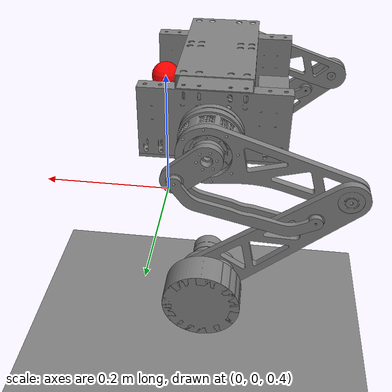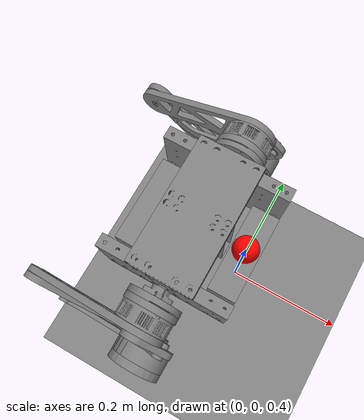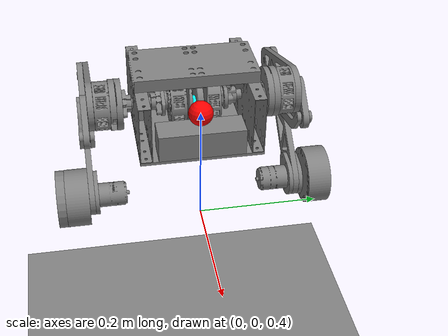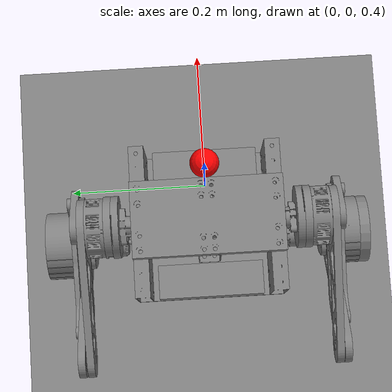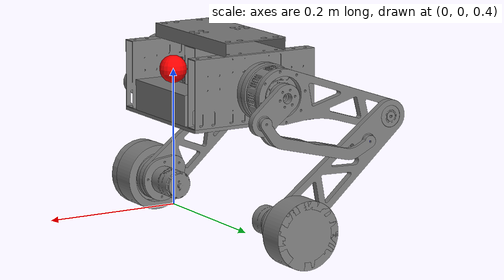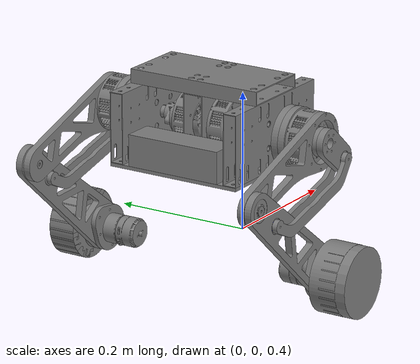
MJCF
<?xml version="1.0" encoding="utf-8"?>
<mujoco model="wheel_leg_axisymmetric_centered_com_scene_v1">
  <compiler angle="radian" autolimits="true"/>
  <option timestep="0.002" gravity="0 0 -9.81" integrator="implicitfast"
          density="1.225" viscosity="1.8e-5"/>
  <include file="wheel_leg_axisymmetric_centered_com_v1.xml"/>
  <worldbody>
    <geom name="floor" pos="0 0 0" size="0 0 .25" type="plane"
          contype="1" conaffinity="0" condim="3"/>
  </worldbody>
</mujoco>

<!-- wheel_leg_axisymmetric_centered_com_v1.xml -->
<mujoco model="wheel_leg_axisymmetric_centered_com_v1">
  <compiler angle="radian" meshdir="assets"/>

  <asset>
  <!-- base -->
    <mesh file="zong_zhuang____base_1__di_ban__1.stl"/>
    <mesh file="zong_zhuang____base_1__dian_chi__1.stl"/>
    <mesh file="zong_zhuang____base_1__dian_chi__2.stl"/>
    <mesh file="zong_zhuang____base_1__zhou_cheng_zhi_zuo_16_46_48_m6_1.stl"/>
    <mesh file="zong_zhuang____base_1__zhou_cheng_zhi_zuo_16_46_48_m6_2.stl"/>
    <mesh file="zong_zhuang____base_1__lv_fang_tong_100_20_200_y_2.stl"/>
    <mesh file="zong_zhuang____base_1__lv_fang_tong_100_20_200_y_3.stl"/>
    <mesh file="zong_zhuang____base_1__lv_fang_tong_100_20_200_2.stl"/>
    <mesh file="zong_zhuang____base_1__lv_fang_tong_100_30_2.stl"/>
    <mesh file="base__joint_motor_assembly_1.stl"/>
    <mesh file="base__joint_motor_assembly_2.stl"/>
  <!-- left_thigh -->
    <mesh file="zong_zhuang____left_thigh_1_16_zhi_cheng_jia__1.stl"/>
    <mesh file="zong_zhuang____left_thigh_1_16_zhi_cheng_jia__2.stl"/>
    <mesh file="zong_zhuang____left_thigh_1__guan_jie_dian_ji_2_dian_kuai__1.stl"/>
    <mesh file="zong_zhuang____left_thigh_1__guan_jie_dian_ji_2_fa_lan_jie_pian__3.stl"/>
    <mesh file="zong_zhuang____left_thigh_1__guan_jie_dian_ji_dian_kuai__1.stl"/>
    <mesh file="zong_zhuang____left_thigh_1__da_tui__1.stl"/>
    <mesh file="zong_zhuang____left_thigh_1__fa_lan_dian_kuai_jie_pian__1.stl"/>
    <mesh file="zong_zhuang____left_thigh_1__tan_guan__1.stl"/>
    <mesh file="left_thigh__joint_motor_assembly_1.stl"/>
  <!-- right_thigh -->
    <mesh file="zong_zhuang____right_thigh_1_16_zhi_cheng_jia__1.stl"/>
    <mesh file="zong_zhuang____right_thigh_1_16_zhi_cheng_jia__2.stl"/>
    <mesh file="zong_zhuang____right_thigh_1__guan_jie_dian_ji_2_dian_kuai__1.stl"/>
    <mesh file="zong_zhuang____right_thigh_1__guan_jie_dian_ji_2_fa_lan_jie_pian__3.stl"/>
    <mesh file="zong_zhuang____right_thigh_1__guan_jie_dian_ji_dian_kuai__1.stl"/>
    <mesh file="zong_zhuang____right_thigh_1__da_tui__1.stl"/>
    <mesh file="zong_zhuang____right_thigh_1__fa_lan_dian_kuai_jie_pian__1.stl"/>
    <mesh file="zong_zhuang____right_thigh_1__tan_guan__1.stl"/>
    <mesh file="right_thigh__joint_motor_assembly_1.stl"/>
  <!-- left_connect1 -->
    <mesh file="zong_zhuang____left_connect1_1__da_tui_lian_gan_1_1.stl"/>
    <mesh file="zong_zhuang____left_connect1_1__da_tui_lian_gan_1_dian_kuai__1.stl"/>

  <!-- right_connect1 -->
    <mesh file="zong_zhuang____right_connect1_1__da_tui_lian_gan_1_1.stl"/>
    <mesh file="zong_zhuang____right_connect1_1__da_tui_lian_gan_1_dian_kuai__1.stl"/>
  <!-- left_connect2 -->
    <mesh file="zong_zhuang____left_connect2_1__dian_pian__m3_10_1_1.stl"/>
    <mesh file="zong_zhuang____left_connect2_1__dian_pian__m3_10_1_2.stl"/>
    <mesh file="zong_zhuang____left_connect2_1__dian_pian__m3_10_1_3.stl"/>
    <mesh file="zong_zhuang____left_connect2_1__dian_pian__m3_10_1_4.stl"/>
    <mesh file="zong_zhuang____left_connect2_1__da_tui_lian_gan_2_1.stl"/>
    <mesh file="zong_zhuang____left_connect2_1__da_tui_lian_gan_2_2.stl"/>
    <mesh file="zong_zhuang____left_connect2_1__tao_tong_luo_mu_m3_8_10_1.stl"/>
    <mesh file="zong_zhuang____left_connect2_1__tao_tong_luo_mu_m3_8_10_2.stl"/>
    <mesh file="zong_zhuang____left_connect2_1__zhou_cheng_8_22_10_1.stl"/>
    <mesh file="zong_zhuang____left_connect2_1__zhou_cheng_8_22_10_2.stl"/>
  <!-- right_connect2 -->
    <mesh file="zong_zhuang____right_connect2_2__dian_pian__m3_10_1_1.stl"/>
    <mesh file="zong_zhuang____right_connect2_2__dian_pian__m3_10_1_2.stl"/>
    <mesh file="zong_zhuang____right_connect2_2__dian_pian__m3_10_1_3.stl"/>
    <mesh file="zong_zhuang____right_connect2_2__dian_pian__m3_10_1_4.stl"/>
    <mesh file="zong_zhuang____right_connect2_2__da_tui_lian_gan_2_1.stl"/>
    <mesh file="zong_zhuang____right_connect2_2__da_tui_lian_gan_2_2.stl"/>
    <mesh file="zong_zhuang____right_connect2_2__tao_tong_luo_mu_m3_8_10_1.stl"/>
    <mesh file="zong_zhuang____right_connect2_2__tao_tong_luo_mu_m3_8_10_2.stl"/>
    <mesh file="zong_zhuang____right_connect2_2__zhou_cheng_8_22_10_1.stl"/>
    <mesh file="zong_zhuang____right_connect2_2__zhou_cheng_8_22_10_2.stl"/>
  <!-- left_calf -->
    <mesh file="zong_zhuang____left_calf_1__dian_pian__m5_14_1_2.stl"/>
    <mesh file="zong_zhuang____left_calf_1__dian_pian__m5_14_1_3.stl"/>
    <mesh file="zong_zhuang____left_calf_1__dian_pian__m6_10_0_5_1.stl"/>
    <mesh file="zong_zhuang____left_calf_1__tao_tong_luo_mu_m5_12_20_1.stl"/>
    <mesh file="zong_zhuang____left_calf_1__xiao_tui__1.stl"/>
    <mesh file="zong_zhuang____left_calf_1__wu_shua_dian_ji_jia_ban_1_1.stl"/>
    <mesh file="zong_zhuang____left_calf_1__wu_shua_dian_ji_jia_ban_2_1.stl"/>
    <mesh file="zong_zhuang____left_calf_1__zhou_cheng_32_12_10_1.stl"/>
    <mesh file="left_calf__dc_motor_assembly_1.stl"/>
  <!-- right_calf -->
    <mesh file="zong_zhuang____right_calf_1__dian_pian__m5_14_1_2.stl"/>
    <mesh file="zong_zhuang____right_calf_1__dian_pian__m5_14_1_3.stl"/>
    <mesh file="zong_zhuang____right_calf_1__dian_pian__m6_10_0_5_1.stl"/>
    <mesh file="zong_zhuang____right_calf_1__tao_tong_luo_mu_m5_12_20_1.stl"/>
    <mesh file="zong_zhuang____right_calf_1__xiao_tui__1.stl"/>
    <mesh file="zong_zhuang____right_calf_1__wu_shua_dian_ji_jia_ban_1_1.stl"/>
    <mesh file="zong_zhuang____right_calf_1__wu_shua_dian_ji_jia_ban_2_1.stl"/>
    <mesh file="zong_zhuang____right_calf_1__zhou_cheng_32_12_10_1.stl"/>
    <mesh file="right_calf__dc_motor_assembly_1.stl"/>
  <!-- left_wheel -->
    <mesh file="zong_zhuang____left_wheel_1.stl"/>
  <!-- right_wheel -->
    <mesh file="zong_zhuang____right_wheel_1.stl"/>
  </asset>

  <default>
    <!-- Imported CAD meshes carry mass/inertia but are not collision shapes.
         Phase 18 enables only the two named wheel meshes explicitly. -->
    <geom contype="0" conaffinity="0"/>
    <default class="base_default"/>
    <default class="left_thigh_default"/>
    <default class="right_thigh_default"/>
    <default class="left_connect1_default"/>
    <default class="right_connect1_default"/>
    <default class="left_connect2_default"/>
    <default class="right_connect2_default"/>
    <default class="left_calf_default"/>
    <default class="right_calf_default"/>
    <default class="left_wheel_default"/>
    <default class="right_wheel_default"/>
  </default>

  <worldbody>
    <light name="top" pos="0 0 2"/>

    <body name="base_body" pos="0 0 0.6">
      <freejoint/>
      <!-- Legacy CAD-origin sensor placeholder. This is not the torso COM
           and must not be treated as the real IMU mounting frame. -->
      <site name="base_frame" pos="0 0 0" size="0.02" rgba="1 0 0 1"/>
      <site name="base_control_frame"
            pos="-0.077378152 0.000000810 -0.032277680"
            size="0.015" rgba="0 1 1 1"/>
      <geom type="mesh" mesh="zong_zhuang____base_1__di_ban__1" mass="0.2000" class="base_default"/>
      <geom type="mesh" mesh="zong_zhuang____base_1__dian_chi__1" mass="0.5210" class="base_default"/>
      <geom type="mesh" mesh="zong_zhuang____base_1__dian_chi__2" mass="0.5210" class="base_default"/>
      <geom type="mesh" mesh="zong_zhuang____base_1__zhou_cheng_zhi_zuo_16_46_48_m6_1" mass="0.0700" class="base_default"/>
      <geom type="mesh" mesh="zong_zhuang____base_1__zhou_cheng_zhi_zuo_16_46_48_m6_2" mass="0.0700" class="base_default"/>
      <geom type="mesh" mesh="zong_zhuang____base_1__lv_fang_tong_100_20_200_y_2" mass="0.1200" class="base_default"/>
      <geom type="mesh" mesh="zong_zhuang____base_1__lv_fang_tong_100_20_200_y_3" mass="0.1200" class="base_default"/>
      <geom type="mesh" mesh="zong_zhuang____base_1__lv_fang_tong_100_20_200_2" mass="0.1260" class="base_default"/>
      <geom type="mesh" mesh="zong_zhuang____base_1__lv_fang_tong_100_30_2" mass="0.0520" class="base_default"/>
      <geom type="mesh" mesh="base__joint_motor_assembly_1" mass="0.3940" class="base_default"/>
      <geom type="mesh" mesh="base__joint_motor_assembly_2" mass="0.3940" class="base_default"/>

      <body name="right_thigh_body" pos="-0.0775 -0.04425 -0.02 " euler="-1.5707963267948966 0 -1.5707963267948966">
        <joint name="right_hip_joint" type="hinge" pos="0 0 0" axis="0 0 1"/>

        <geom type="mesh" mesh="zong_zhuang____right_thigh_1_16_zhi_cheng_jia__1" mass="0.0300" class="right_thigh_default"/>
        <geom type="mesh" mesh="zong_zhuang____right_thigh_1_16_zhi_cheng_jia__2" mass="0.0300" class="right_thigh_default"/>
        <geom type="mesh" mesh="zong_zhuang____right_thigh_1__guan_jie_dian_ji_2_dian_kuai__1" mass="0.0300" class="right_thigh_default"/>
        <geom type="mesh" mesh="zong_zhuang____right_thigh_1__guan_jie_dian_ji_2_fa_lan_jie_pian__3" mass="0.0740" class="right_thigh_default"/>
        <geom type="mesh" mesh="zong_zhuang____right_thigh_1__guan_jie_dian_ji_dian_kuai__1" mass="0.0300" class="right_thigh_default"/>
        <geom type="mesh" mesh="zong_zhuang____right_thigh_1__da_tui__1" mass="0.1250" class="right_thigh_default"/>
        <geom type="mesh" mesh="zong_zhuang____right_thigh_1__fa_lan_dian_kuai_jie_pian__1" mass="0.0120" class="right_thigh_default"/>
        <geom type="mesh" mesh="zong_zhuang____right_thigh_1__tan_guan__1" mass="0.1010" class="right_thigh_default"/>
        <geom type="mesh" mesh="right_thigh__joint_motor_assembly_1" mass="0.3940" class="right_thigh_default"/>

        <body name="right_calf_body" pos="-0.04350 -0.17467 -0.12525" euler="0 0 3.141592653589793">
          <joint name="right_knee_joint" type="hinge" pos="0 0 0" axis="0 0 1"/>
          <site name="right_calf_site" pos="0.03180 -0.03859  -0.01050" size="0.01" rgba="0 0 1 1"/>

          <geom type="mesh" mesh="zong_zhuang____right_calf_1__dian_pian__m5_14_1_2" mass="0.0001" class="right_calf_default"/>
          <geom type="mesh" mesh="zong_zhuang____right_calf_1__dian_pian__m5_14_1_3" mass="0.0001" class="right_calf_default"/>
          <geom type="mesh" mesh="zong_zhuang____right_calf_1__dian_pian__m6_10_0_5_1" mass="0.0001" class="right_calf_default"/>
          <geom type="mesh" mesh="zong_zhuang____right_calf_1__tao_tong_luo_mu_m5_12_20_1" mass="0.0010" class="right_calf_default"/>
          <geom type="mesh" mesh="zong_zhuang____right_calf_1__xiao_tui__1" mass="0.1510" class="right_calf_default"/>
          <geom type="mesh" mesh="zong_zhuang____right_calf_1__wu_shua_dian_ji_jia_ban_1_1" mass="0.0130" class="right_calf_default"/>
          <geom type="mesh" mesh="zong_zhuang____right_calf_1__wu_shua_dian_ji_jia_ban_2_1" mass="0.0100" class="right_calf_default"/>
          <geom type="mesh" mesh="zong_zhuang____right_calf_1__zhou_cheng_32_12_10_1" mass="0.0350" class="right_calf_default"/>
          <geom type="mesh" mesh="right_calf__dc_motor_assembly_1" mass="0.3860" class="right_calf_default"/>

          <body name="right_wheel_body" pos="0.14297 -0.17368 -0.04280">
            <inertial pos="0 0 -0.0074151403395680236"
                      mass="0.3431"
                      diaginertia="0.00042373758938575042 0.00024590004587548409 0.00024588027365249354"
                      quat="0 0.70710678118654891 0 0.70710678118654891"/>
            <joint name="right_wheel_joint" type="hinge" pos="0 0 0" axis="0 0 1"/>

            <geom name="right_wheel_visual" type="mesh" mesh="zong_zhuang____right_wheel_1"
                  mass="0.3431" class="right_wheel_default" contype="0" conaffinity="0"/>
            <geom name="right_wheel_collision" type="cylinder" size="0.05 0.02"
                  pos="0 0 -0.0075" mass="0" class="right_wheel_default"
                  contype="0" conaffinity="1"/>
          </body>
        </body>

        <body name="right_connect1_body" pos="0 0 -0.1235" euler="3.141592653589793 0 0">
          <joint name="right_connect1_joint" type="hinge" pos="0 0 0" axis="0 0 1"/>

          <geom type="mesh" mesh="zong_zhuang____right_connect1_1__da_tui_lian_gan_1_1" mass="0.0370" class="right_connect1_default"/>
          <geom type="mesh" mesh="zong_zhuang____right_connect1_1__da_tui_lian_gan_1_dian_kuai__1" mass="0.0110" class="right_connect1_default"/>

            <body name="right_connect2_body" pos="-0.03180 -0.03859 0.01225" euler="3.141592653589793 0 0">
              <joint name="right_connect2_joint" type="hinge" pos="0 0 0" axis="0 0 1"/>
              <site name="right_connect2_site" pos="-0.04350 -0.17467 0" size="0.01" rgba="0 1 0 1"/>

              <geom type="mesh" mesh="zong_zhuang____right_connect2_2__dian_pian__m3_10_1_1" mass="0.0001" class="right_connect2_default"/>
              <geom type="mesh" mesh="zong_zhuang____right_connect2_2__dian_pian__m3_10_1_2" mass="0.0001" class="right_connect2_default"/>
              <geom type="mesh" mesh="zong_zhuang____right_connect2_2__dian_pian__m3_10_1_3" mass="0.0001" class="right_connect2_default"/>
              <geom type="mesh" mesh="zong_zhuang____right_connect2_2__dian_pian__m3_10_1_4" mass="0.0001" class="right_connect2_default"/>
              <geom type="mesh" mesh="zong_zhuang____right_connect2_2__da_tui_lian_gan_2_1" mass="0.0367" class="right_connect2_default"/>
              <geom type="mesh" mesh="zong_zhuang____right_connect2_2__da_tui_lian_gan_2_2" mass="0.0367" class="right_connect2_default"/>
              <geom type="mesh" mesh="zong_zhuang____right_connect2_2__tao_tong_luo_mu_m3_8_10_1" mass="0.0010" class="right_connect2_default"/>
              <geom type="mesh" mesh="zong_zhuang____right_connect2_2__tao_tong_luo_mu_m3_8_10_2" mass="0.0010" class="right_connect2_default"/>
              <geom type="mesh" mesh="zong_zhuang____right_connect2_2__zhou_cheng_8_22_10_1" mass="0.0170" class="right_connect2_default"/>
              <geom type="mesh" mesh="zong_zhuang____right_connect2_2__zhou_cheng_8_22_10_2" mass="0.0170" class="right_connect2_default"/>
            </body>
        </body>

      </body>

      <body name="left_thigh_body" pos="-0.0775 0.04425 -0.02 " euler="-1.5707963267948966 0 -1.5707963267948966">
        <joint name="left_hip_joint" type="hinge" pos="0 0 0" axis="0 0 1"/>

        <geom type="mesh" mesh="zong_zhuang____left_thigh_1_16_zhi_cheng_jia__1" mass="0.0300" class="left_thigh_default"/>
        <geom type="mesh" mesh="zong_zhuang____left_thigh_1_16_zhi_cheng_jia__2" mass="0.0300" class="left_thigh_default"/>
        <geom type="mesh" mesh="zong_zhuang____left_thigh_1__guan_jie_dian_ji_2_dian_kuai__1" mass="0.0300" class="left_thigh_default"/>
        <geom type="mesh" mesh="zong_zhuang____left_thigh_1__guan_jie_dian_ji_2_fa_lan_jie_pian__3" mass="0.0740" class="left_thigh_default"/>
        <geom type="mesh" mesh="zong_zhuang____left_thigh_1__guan_jie_dian_ji_dian_kuai__1" mass="0.0300" class="left_thigh_default"/>
        <geom type="mesh" mesh="zong_zhuang____left_thigh_1__da_tui__1" mass="0.1250" class="left_thigh_default"/>
        <geom type="mesh" mesh="zong_zhuang____left_thigh_1__fa_lan_dian_kuai_jie_pian__1" mass="0.0120" class="left_thigh_default"/>
        <geom type="mesh" mesh="zong_zhuang____left_thigh_1__tan_guan__1" mass="0.1010" class="left_thigh_default"/>
        <geom type="mesh" mesh="left_thigh__joint_motor_assembly_1" mass="0.3940" class="left_thigh_default"/>

          <body name="left_calf_body" pos="-0.04350 -0.17467 0.12525" euler="0 0 3.141592653589793">
            <joint name="left_knee_joint" type="hinge" pos="0 0 0" axis="0 0 1"/>
            <site name="left_calf_site" pos="0.03180 -0.03859  0.01050" size="0.01" rgba="0 0 1 1"/>

            <geom type="mesh" mesh="zong_zhuang____left_calf_1__dian_pian__m5_14_1_2" mass="0.0001" class="left_calf_default"/>
            <geom type="mesh" mesh="zong_zhuang____left_calf_1__dian_pian__m5_14_1_3" mass="0.0001" class="left_calf_default"/>
            <geom type="mesh" mesh="zong_zhuang____left_calf_1__dian_pian__m6_10_0_5_1" mass="0.0001" class="left_calf_default"/>
            <geom type="mesh" mesh="zong_zhuang____left_calf_1__tao_tong_luo_mu_m5_12_20_1" mass="0.0010" class="left_calf_default"/>
            <geom type="mesh" mesh="zong_zhuang____left_calf_1__xiao_tui__1" mass="0.1510" class="left_calf_default"/>
            <geom type="mesh" mesh="zong_zhuang____left_calf_1__wu_shua_dian_ji_jia_ban_1_1" mass="0.0130" class="left_calf_default"/>
            <geom type="mesh" mesh="zong_zhuang____left_calf_1__wu_shua_dian_ji_jia_ban_2_1" mass="0.0100" class="left_calf_default"/>
            <geom type="mesh" mesh="zong_zhuang____left_calf_1__zhou_cheng_32_12_10_1" mass="0.0350" class="left_calf_default"/>
            <geom type="mesh" mesh="left_calf__dc_motor_assembly_1" mass="0.3860" class="left_calf_default"/>

            <body name="left_wheel_body" pos="0.14297 -0.17368 0.04280">
                <inertial pos="0 0 0.0074151403411230315"
                          mass="0.3431"
                          diaginertia="0.00042373759240507875 0.00024590004741612074 0.00024588027533170538"
                          quat="0.10310958854528945 0.69954872078363728 -0.10310958854528945 0.69954872078363728"/>
                <joint name="left_wheel_joint" type="hinge" pos="0 0 0" axis="0 0 1"/>

                <geom name="left_wheel_visual" type="mesh" mesh="zong_zhuang____left_wheel_1"
                      mass="0.3431" class="left_wheel_default" contype="0" conaffinity="0"/>
                <geom name="left_wheel_collision" type="cylinder" size="0.05 0.02"
                      pos="0 0 0.0075" mass="0" class="left_wheel_default"
                      contype="0" conaffinity="1"/>
            </body>
          </body>

          <body name="left_connect1_body" pos="0 0 0.1235">
            <joint name="left_connect1_joint" type="hinge" pos="0 0 0" axis="0 0 1"/>

            <geom type="mesh" mesh="zong_zhuang____left_connect1_1__da_tui_lian_gan_1_1" mass="0.0370" class="left_connect1_default"/>
            <geom type="mesh" mesh="zong_zhuang____left_connect1_1__da_tui_lian_gan_1_dian_kuai__1" mass="0.0110" class="left_connect1_default"/>

            <body name="left_connect2_body" pos="-0.03180 0.03859 0.01225">
              <joint name="left_connect2_joint" type="hinge" pos="0 0 0" axis="0 0 1"/>
              <site name="left_connect2_site" pos="-0.04350 -0.17467 0" size="0.01" rgba="0 1 0 1"/>

              <geom type="mesh" mesh="zong_zhuang____left_connect2_1__dian_pian__m3_10_1_1" mass="0.0001" class="left_connect2_default"/>
              <geom type="mesh" mesh="zong_zhuang____left_connect2_1__dian_pian__m3_10_1_2" mass="0.0001" class="left_connect2_default"/>
              <geom type="mesh" mesh="zong_zhuang____left_connect2_1__dian_pian__m3_10_1_3" mass="0.0001" class="left_connect2_default"/>
              <geom type="mesh" mesh="zong_zhuang____left_connect2_1__dian_pian__m3_10_1_4" mass="0.0001" class="left_connect2_default"/>
              <geom type="mesh" mesh="zong_zhuang____left_connect2_1__da_tui_lian_gan_2_1" mass="0.0367" class="left_connect2_default"/>
              <geom type="mesh" mesh="zong_zhuang____left_connect2_1__da_tui_lian_gan_2_2" mass="0.0367" class="left_connect2_default"/>
              <geom type="mesh" mesh="zong_zhuang____left_connect2_1__tao_tong_luo_mu_m3_8_10_1" mass="0.0010" class="left_connect2_default"/>
              <geom type="mesh" mesh="zong_zhuang____left_connect2_1__tao_tong_luo_mu_m3_8_10_2" mass="0.0010" class="left_connect2_default"/>
              <geom type="mesh" mesh="zong_zhuang____left_connect2_1__zhou_cheng_8_22_10_1" mass="0.0170" class="left_connect2_default"/>
              <geom type="mesh" mesh="zong_zhuang____left_connect2_1__zhou_cheng_8_22_10_2" mass="0.0170" class="left_connect2_default"/>
            </body>
        </body>

      </body>

    </body>
  </worldbody>

  <!-- Unit-gear native torque actuators. Canonical sign conversion stays in the Adapter. -->
  <actuator>
    <motor name="left_hip_torque" joint="left_hip_joint" gear="1"/>
    <motor name="left_knee_torque" joint="left_knee_joint" gear="1"/>
    <motor name="left_wheel_torque" joint="left_wheel_joint" gear="1"/>
    <motor name="right_hip_torque" joint="right_hip_joint" gear="1"/>
    <motor name="right_knee_torque" joint="right_knee_joint" gear="1"/>
    <motor name="right_wheel_torque" joint="right_wheel_joint" gear="1"/>
  </actuator>

  <sensor>
    <accelerometer name="base_accel" site="base_frame"/>
    <gyro name="base_gyro" site="base_frame"/>
    <framequat name="base_quat" objtype="site" objname="base_frame"/>

    <jointpos name="left_hip_encoder" joint="left_hip_joint"/>
    <jointvel name="left_hip_encoder_vel" joint="left_hip_joint"/>
    <jointpos name="right_hip_encoder" joint="right_hip_joint"/>
    <jointvel name="right_hip_encoder_vel" joint="right_hip_joint"/>

    <jointpos name="left_connect1_encoder" joint="left_connect1_joint"/>
    <jointvel name="left_connect1_encoder_vel" joint="left_connect1_joint"/>
    <jointpos name="right_connect1_encoder" joint="right_connect1_joint"/>
    <jointvel name="right_connect1_encoder_vel" joint="right_connect1_joint"/>

    <jointpos name="left_calf_encoder" joint="left_knee_joint"/>
    <jointvel name="left_calf_encoder_vel" joint="left_knee_joint"/>
    <jointpos name="right_calf_encoder" joint="right_knee_joint"/>
    <jointvel name="right_calf_encoder_vel" joint="right_knee_joint"/>

    <jointpos name="left_wheel_encoder" joint="left_wheel_joint"/>
    <jointvel name="left_wheel_encoder_vel" joint="left_wheel_joint"/>
    <jointpos name="right_wheel_encoder" joint="right_wheel_joint"/>
    <jointvel name="right_wheel_encoder_vel" joint="right_wheel_joint"/>
  </sensor>

  <equality>
    <weld name="base_weld" body1="base_body" body2="world"/>
    <connect name="left_leg_closure" site1="left_connect2_site" site2="left_calf_site"/>
    <connect name="right_leg_closure" site1="right_connect2_site" site2="right_calf_site"/>
  </equality>

</mujoco>
